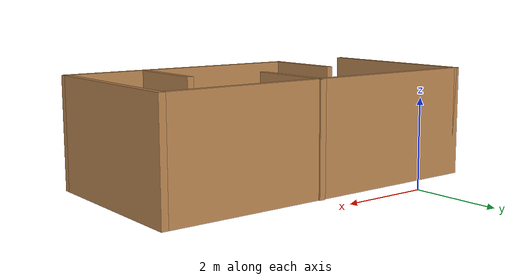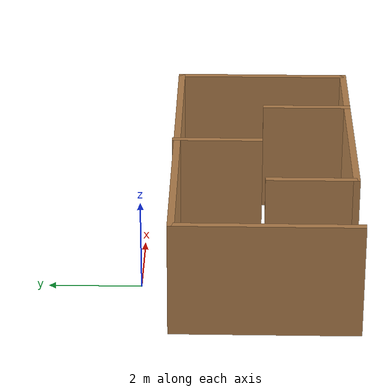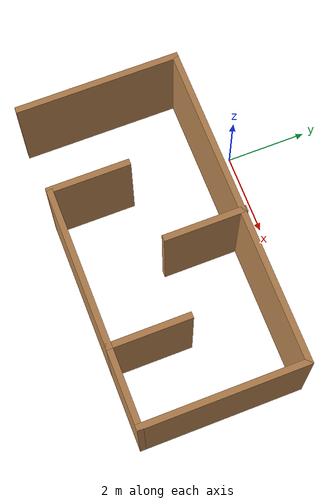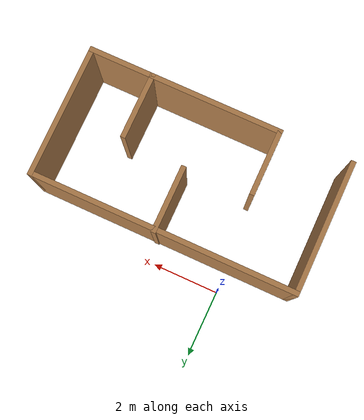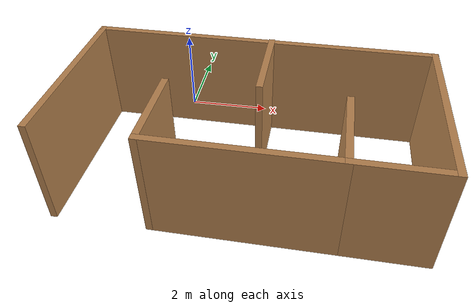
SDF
<?xml version='1.0'?>
<sdf version='1.6'>
  <model name='slam_test'>
    <pose frame=''>1.99193 -2.6158 0 0 -0 0</pose>
    <link name='Wall_11'>
      <collision name='Wall_11_Collision'>
        <geometry>
          <box>
            <size>2 0.15 2.5</size>
          </box>
        </geometry>
        <pose frame=''>0 0 1.25 0 -0 0</pose>
      </collision>
      <visual name='Wall_11_Visual'>
        <pose frame=''>0 0 1.25 0 -0 0</pose>
        <geometry>
          <box>
            <size>2 0.15 2.5</size>
          </box>
        </geometry>
        <material>
          <script>
            <uri>file://media/materials/scripts/gazebo.material</uri>
            <name>Gazebo/Wood</name>
          </script>
          <ambient>1 1 1 1</ambient>
        </material>
        <meta>
          <layer>0</layer>
        </meta>
      </visual>
      <pose frame=''>0.218396 1.01596 0 0 -0 -1.5708</pose>
    </link>
    <link name='Wall_2'>
      <collision name='Wall_2_Collision'>
        <geometry>
          <box>
            <size>4 0.15 2.5</size>
          </box>
        </geometry>
        <pose frame=''>0 0 1.25 0 -0 0</pose>
      </collision>
      <visual name='Wall_2_Visual'>
        <pose frame=''>0 0 1.25 0 -0 0</pose>
        <geometry>
          <box>
            <size>4 0.15 2.5</size>
          </box>
        </geometry>
        <material>
          <script>
            <uri>file://media/materials/scripts/gazebo.material</uri>
            <name>Gazebo/Wood</name>
          </script>
          <ambient>1 1 1 1</ambient>
        </material>
        <meta>
          <layer>0</layer>
        </meta>
      </visual>
      <pose frame=''>-3.925 -0.01596 0 0 -0 1.5708</pose>
    </link>
    <link name='Wall_3'>
      <collision name='Wall_3_Collision'>
        <geometry>
          <box>
            <size>8 0.15 2.5</size>
          </box>
        </geometry>
        <pose frame=''>0 0 1.25 0 -0 0</pose>
      </collision>
      <visual name='Wall_3_Visual'>
        <pose frame=''>0 0 1.25 0 -0 0</pose>
        <geometry>
          <box>
            <size>8 0.15 2.5</size>
          </box>
        </geometry>
        <material>
          <script>
            <uri>file://media/materials/scripts/gazebo.material</uri>
            <name>Gazebo/Wood</name>
          </script>
          <ambient>1 1 1 1</ambient>
        </material>
        <meta>
          <layer>0</layer>
        </meta>
      </visual>
      <pose frame=''>0 1.90904 0 0 -0 0</pose>
    </link>
    <link name='Wall_4'>
      <collision name='Wall_4_Collision'>
        <geometry>
          <box>
            <size>4 0.15 2.5</size>
          </box>
        </geometry>
        <pose frame=''>0 0 1.25 0 -0 0</pose>
      </collision>
      <visual name='Wall_4_Visual'>
        <pose frame=''>0 0 1.25 0 -0 0</pose>
        <geometry>
          <box>
            <size>4 0.15 2.5</size>
          </box>
        </geometry>
        <material>
          <script>
            <uri>file://media/materials/scripts/gazebo.material</uri>
            <name>Gazebo/Wood</name>
          </script>
          <ambient>1 1 1 1</ambient>
        </material>
        <meta>
          <layer>0</layer>
        </meta>
      </visual>
      <pose frame=''>3.925 -0.01596 0 0 -0 -1.5708</pose>
    </link>
    <link name='Wall_5'>
      <collision name='Wall_5_Collision'>
        <geometry>
          <box>
            <size>2 0.15 2.5</size>
          </box>
        </geometry>
        <pose frame=''>0 0 1.25 0 -0 0</pose>
      </collision>
      <visual name='Wall_5_Visual'>
        <pose frame=''>0 0 1.25 0 -0 0</pose>
        <geometry>
          <box>
            <size>2 0.15 2.5</size>
          </box>
        </geometry>
        <material>
          <script>
            <uri>file://media/materials/scripts/gazebo.material</uri>
            <name>Gazebo/Wood</name>
          </script>
          <ambient>1 1 1 1</ambient>
        </material>
        <meta>
          <layer>0</layer>
        </meta>
      </visual>
      <pose frame=''>3 -1.94096 0 0 -0 3.14159</pose>
    </link>
    <link name='Wall_6'>
      <collision name='Wall_6_Collision'>
        <geometry>
          <box>
            <size>2 0.15 2.5</size>
          </box>
        </geometry>
        <pose frame=''>0 0 1.25 0 -0 0</pose>
      </collision>
      <visual name='Wall_6_Visual'>
        <pose frame=''>0 0 1.25 0 -0 0</pose>
        <geometry>
          <box>
            <size>2 0.15 2.5</size>
          </box>
        </geometry>
        <material>
          <script>
            <uri>file://media/materials/scripts/gazebo.material</uri>
            <name>Gazebo/Wood</name>
          </script>
          <ambient>1 1 1 1</ambient>
        </material>
        <meta>
          <layer>0</layer>
        </meta>
      </visual>
      <pose frame=''>2.075 -1.01596 0 0 -0 1.5708</pose>
    </link>
    <link name='Wall_8'>
      <collision name='Wall_8_Collision'>
        <geometry>
          <box>
            <size>4 0.15 2.5</size>
          </box>
        </geometry>
        <pose frame=''>0 0 1.25 0 -0 0</pose>
      </collision>
      <visual name='Wall_8_Visual'>
        <pose frame=''>0 0 1.25 0 -0 0</pose>
        <geometry>
          <box>
            <size>4 0.15 2.5</size>
          </box>
        </geometry>
        <material>
          <script>
            <uri>file://media/materials/scripts/gazebo.material</uri>
            <name>Gazebo/Wood</name>
          </script>
          <ambient>1 1 1 1</ambient>
        </material>
        <meta>
          <layer>0</layer>
        </meta>
      </visual>
      <pose frame=''>0.15 -1.94096 0 0 -0 3.14159</pose>
    </link>
    <link name='Wall_9'>
      <collision name='Wall_9_Collision'>
        <geometry>
          <box>
            <size>2 0.15 2.5</size>
          </box>
        </geometry>
        <pose frame=''>0 0 1.25 0 -0 0</pose>
      </collision>
      <visual name='Wall_9_Visual'>
        <pose frame=''>0 0 1.25 0 -0 0</pose>
        <geometry>
          <box>
            <size>2 0.15 2.5</size>
          </box>
        </geometry>
        <material>
          <script>
            <uri>file://media/materials/scripts/gazebo.material</uri>
            <name>Gazebo/Wood</name>
          </script>
          <ambient>1 1 1 1</ambient>
        </material>
        <meta>
          <layer>0</layer>
        </meta>
      </visual>
      <pose frame=''>-1.775 -1.01596 0 0 -0 1.5708</pose>
    </link>
    <static>1</static>
  </model>
</sdf>
